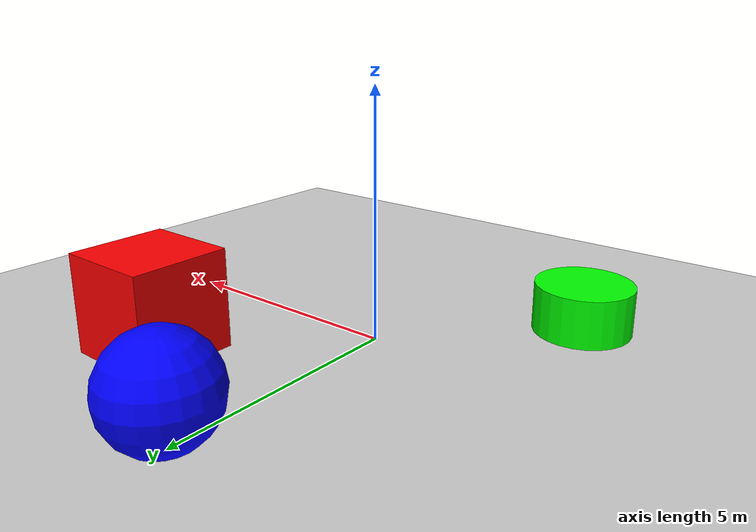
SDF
<?xml version="1.0" ?>
<sdf version="1.6">
  <world name="test_visible">
    <include>
      <uri>model://sun</uri>
    </include>
    <include>
      <uri>model://ground_plane</uri>
    </include>

    <!-- 红色大方块 -->
    <model name="red_box">
      <static>true</static>
      <pose>3 3 1 0 0 0</pose>
      <link name="link">
        <collision name="collision">
          <geometry>
            <box>
              <size>2 2 2</size>
            </box>
          </geometry>
        </collision>
        <visual name="visual">
          <geometry>
            <box>
              <size>2 2 2</size>
            </box>
          </geometry>
          <material>
            <ambient>1 0 0 1</ambient>
            <diffuse>1 0 0 1</diffuse>
          </material>
        </visual>
      </link>
    </model>

    <!-- 绿色圆柱 -->
    <model name="green_cylinder">
      <static>true</static>
      <pose>-3 -3 0.5 0 0 0</pose>
      <link name="link">
        <collision name="collision">
          <geometry>
            <cylinder>
              <radius>1</radius>
              <length>1</length>
            </cylinder>
          </geometry>
        </collision>
        <visual name="visual">
          <geometry>
            <cylinder>
              <radius>1</radius>
              <length>1</length>
            </cylinder>
          </geometry>
          <material>
            <ambient>0 1 0 1</ambient>
            <diffuse>0 1 0 1</diffuse>
          </material>
        </visual>
      </link>
    </model>

    <!-- 蓝色球体 -->
    <model name="blue_sphere">
      <static>true</static>
      <pose>0 5 1 0 0 0</pose>
      <link name="link">
        <collision name="collision">
          <geometry>
            <sphere>
              <radius>1</radius>
            </sphere>
          </geometry>
        </collision>
        <visual name="visual">
          <geometry>
            <sphere>
              <radius>1</radius>
            </sphere>
          </geometry>
          <material>
            <ambient>0 0 1 1</ambient>
            <diffuse>0 0 1 1</diffuse>
          </material>
        </visual>
      </link>
    </model>

  </world>
</sdf>
